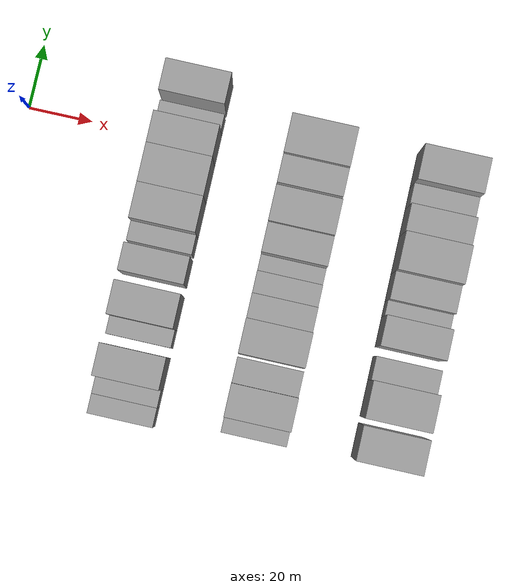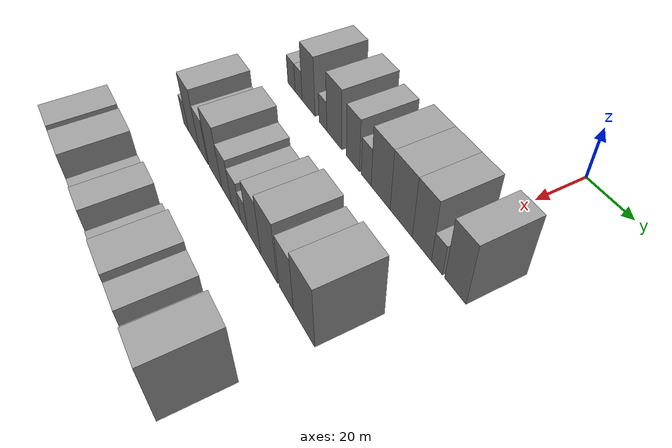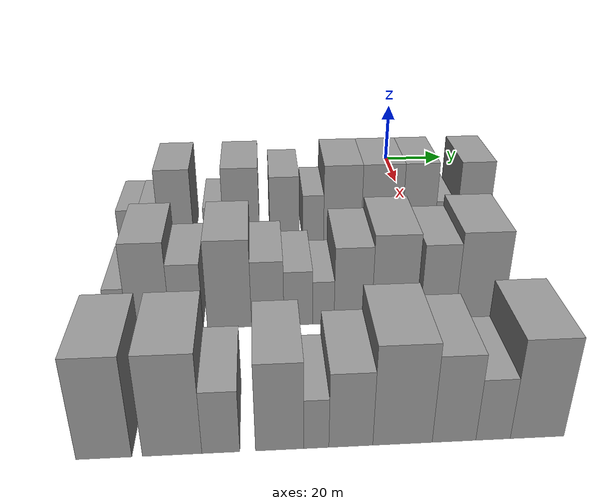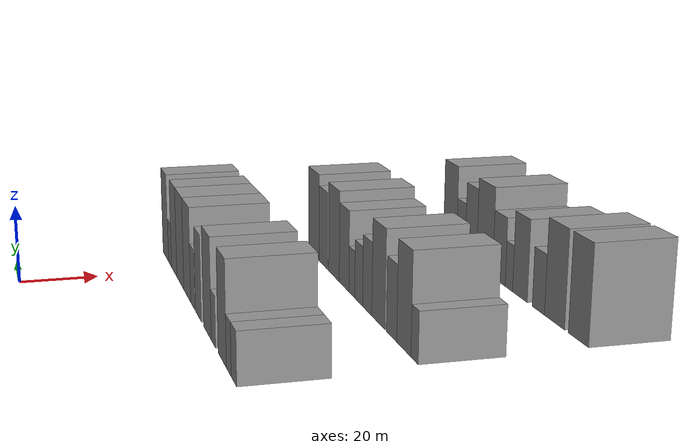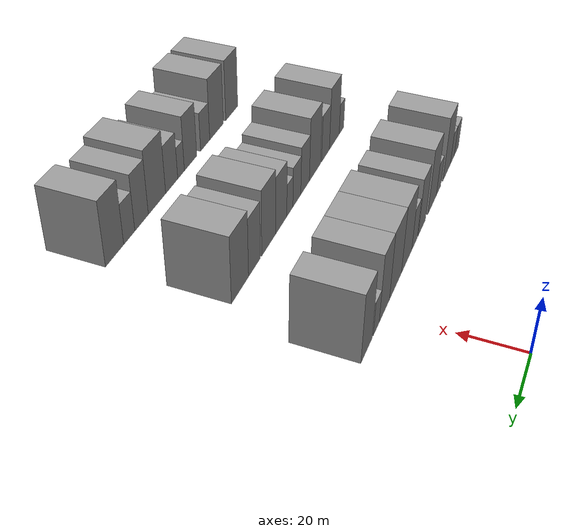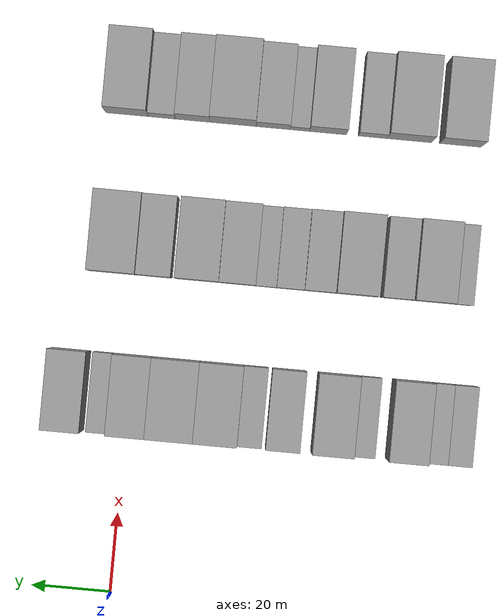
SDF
<sdf version="1.6">
 <world name="default">
  <model name="building_34">
   <static>1</static>
   <pose>50.0000 -83.8669 0 0.000000 0.000000 0.000000</pose>
   <link name="link">
    <pose>0 0 6.00 0 0 0</pose>
    <collision name="collision"><geometry><box><size>20.0000 5.9721 12.0000</size></box></geometry></collision>
    <visual name="visual">
     <cast_shadows>0</cast_shadows>
     <geometry><box><size>20.0000 5.9721 12.0000</size></box></geometry>
     <material>
      <script>
       <uri>model://grey_wall/materials/scripts</uri>
       <uri>model://grey_wall/materials/textures</uri>
       <name>vrc/grey_wall</name>
      </script>
     </material>
    </visual>
   </link>
  </model>
  <model name="building_35">
   <static>1</static>
   <pose>50.0000 -78.1564 0 0.000000 0.000000 0.000000</pose>
   <link name="link">
    <pose>0 0 6.00 0 0 0</pose>
    <collision name="collision"><geometry><box><size>20.0000 5.4489 12.0000</size></box></geometry></collision>
    <visual name="visual">
     <cast_shadows>0</cast_shadows>
     <geometry><box><size>20.0000 5.4489 12.0000</size></box></geometry>
     <material>
      <script>
       <uri>model://grey_wall/materials/scripts</uri>
       <uri>model://grey_wall/materials/textures</uri>
       <name>vrc/grey_wall</name>
      </script>
     </material>
    </visual>
   </link>
  </model>
  <model name="building_36">
   <static>1</static>
   <pose>50.0000 -70.5447 0 0.000000 0.000000 0.000000</pose>
   <link name="link">
    <pose>0 0 12.00 0 0 0</pose>
    <collision name="collision"><geometry><box><size>20.0000 9.7744 24.0000</size></box></geometry></collision>
    <visual name="visual">
     <cast_shadows>0</cast_shadows>
     <geometry><box><size>20.0000 9.7744 24.0000</size></box></geometry>
     <material>
      <script>
       <uri>model://grey_wall/materials/scripts</uri>
       <uri>model://grey_wall/materials/textures</uri>
       <name>vrc/grey_wall</name>
      </script>
     </material>
    </visual>
   </link>
  </model>
  <model name="building_37">
   <static>1</static>
   <pose>50.0000 -59.8990 0 0.000000 0.000000 0.000000</pose>
   <link name="link">
    <pose>0 0 6.00 0 0 0</pose>
    <collision name="collision"><geometry><box><size>20.0000 5.5169 12.0000</size></box></geometry></collision>
    <visual name="visual">
     <cast_shadows>0</cast_shadows>
     <geometry><box><size>20.0000 5.5169 12.0000</size></box></geometry>
     <material>
      <script>
       <uri>model://grey_wall/materials/scripts</uri>
       <uri>model://grey_wall/materials/textures</uri>
       <name>vrc/grey_wall</name>
      </script>
     </material>
    </visual>
   </link>
  </model>
  <model name="building_38">
   <static>1</static>
   <pose>50.0000 -51.9789 0 0.000000 0.000000 0.000000</pose>
   <link name="link">
    <pose>0 0 12.00 0 0 0</pose>
    <collision name="collision"><geometry><box><size>20.0000 10.3234 24.0000</size></box></geometry></collision>
    <visual name="visual">
     <cast_shadows>0</cast_shadows>
     <geometry><box><size>20.0000 10.3234 24.0000</size></box></geometry>
     <material>
      <script>
       <uri>model://grey_wall/materials/scripts</uri>
       <uri>model://grey_wall/materials/textures</uri>
       <name>vrc/grey_wall</name>
      </script>
     </material>
    </visual>
   </link>
  </model>
  <model name="building_39">
   <static>1</static>
   <pose>50.0000 -39.5940 0 0.000000 0.000000 0.000000</pose>
   <link name="link">
    <pose>0 0 10.50 0 0 0</pose>
    <collision name="collision"><geometry><box><size>20.0000 8.4463 21.0000</size></box></geometry></collision>
    <visual name="visual">
     <cast_shadows>0</cast_shadows>
     <geometry><box><size>20.0000 8.4463 21.0000</size></box></geometry>
     <material>
      <script>
       <uri>model://grey_wall/materials/scripts</uri>
       <uri>model://grey_wall/materials/textures</uri>
       <name>vrc/grey_wall</name>
      </script>
     </material>
    </visual>
   </link>
  </model>
  <model name="building_40">
   <static>1</static>
   <pose>50.0000 -31.3470 0 0.000000 0.000000 0.000000</pose>
   <link name="link">
    <pose>0 0 7.50 0 0 0</pose>
    <collision name="collision"><geometry><box><size>20.0000 6.0478 15.0000</size></box></geometry></collision>
    <visual name="visual">
     <cast_shadows>0</cast_shadows>
     <geometry><box><size>20.0000 6.0478 15.0000</size></box></geometry>
     <material>
      <script>
       <uri>model://grey_wall/materials/scripts</uri>
       <uri>model://grey_wall/materials/textures</uri>
       <name>vrc/grey_wall</name>
      </script>
     </material>
    </visual>
   </link>
  </model>
  <model name="building_41">
   <static>1</static>
   <pose>50.0000 -22.8566 0 0.000000 0.000000 0.000000</pose>
   <link name="link">
    <pose>0 0 12.00 0 0 0</pose>
    <collision name="collision"><geometry><box><size>20.0000 10.9331 24.0000</size></box></geometry></collision>
    <visual name="visual">
     <cast_shadows>0</cast_shadows>
     <geometry><box><size>20.0000 10.9331 24.0000</size></box></geometry>
     <material>
      <script>
       <uri>model://grey_wall/materials/scripts</uri>
       <uri>model://grey_wall/materials/textures</uri>
       <name>vrc/grey_wall</name>
      </script>
     </material>
    </visual>
   </link>
  </model>
  <model name="building_42">
   <static>1</static>
   <pose>50.0000 -11.4471 0 0.000000 0.000000 0.000000</pose>
   <link name="link">
    <pose>0 0 12.00 0 0 0</pose>
    <collision name="collision"><geometry><box><size>20.0000 11.8859 24.0000</size></box></geometry></collision>
    <visual name="visual">
     <cast_shadows>0</cast_shadows>
     <geometry><box><size>20.0000 11.8859 24.0000</size></box></geometry>
     <material>
      <script>
       <uri>model://grey_wall/materials/scripts</uri>
       <uri>model://grey_wall/materials/textures</uri>
       <name>vrc/grey_wall</name>
      </script>
     </material>
    </visual>
   </link>
  </model>
  <model name="building_43">
   <static>1</static>
   <pose>50.0000 -0.6827 0 0.000000 0.000000 0.000000</pose>
   <link name="link">
    <pose>0 0 12.00 0 0 0</pose>
    <collision name="collision"><geometry><box><size>20.0000 9.6428 24.0000</size></box></geometry></collision>
    <visual name="visual">
     <cast_shadows>0</cast_shadows>
     <geometry><box><size>20.0000 9.6428 24.0000</size></box></geometry>
     <material>
      <script>
       <uri>model://grey_wall/materials/scripts</uri>
       <uri>model://grey_wall/materials/textures</uri>
       <name>vrc/grey_wall</name>
      </script>
     </material>
    </visual>
   </link>
  </model>
  <model name="building_44">
   <static>1</static>
   <pose>50.0000 6.7849 0 0.000000 0.000000 0.000000</pose>
   <link name="link">
    <pose>0 0 6.00 0 0 0</pose>
    <collision name="collision"><geometry><box><size>20.0000 5.2925 12.0000</size></box></geometry></collision>
    <visual name="visual">
     <cast_shadows>0</cast_shadows>
     <geometry><box><size>20.0000 5.2925 12.0000</size></box></geometry>
     <material>
      <script>
       <uri>model://grey_wall/materials/scripts</uri>
       <uri>model://grey_wall/materials/textures</uri>
       <name>vrc/grey_wall</name>
      </script>
     </material>
    </visual>
   </link>
  </model>
  <model name="building_45">
   <static>1</static>
   <pose>50.0000 15.2552 0 0.000000 0.000000 0.000000</pose>
   <link name="link">
    <pose>0 0 12.00 0 0 0</pose>
    <collision name="collision"><geometry><box><size>20.0000 9.6482 24.0000</size></box></geometry></collision>
    <visual name="visual">
     <cast_shadows>0</cast_shadows>
     <geometry><box><size>20.0000 9.6482 24.0000</size></box></geometry>
     <material>
      <script>
       <uri>model://grey_wall/materials/scripts</uri>
       <uri>model://grey_wall/materials/textures</uri>
       <name>vrc/grey_wall</name>
      </script>
     </material>
    </visual>
   </link>
  </model>
  <model name="building_119">
   <static>1</static>
   <pose>90.0000 -81.1361 0 0.000000 0.000000 0.000000</pose>
   <link name="link">
    <pose>0 0 6.00 0 0 0</pose>
    <collision name="collision"><geometry><box><size>20.0000 4.8961 12.0000</size></box></geometry></collision>
    <visual name="visual">
     <cast_shadows>0</cast_shadows>
     <geometry><box><size>20.0000 4.8961 12.0000</size></box></geometry>
     <material>
      <script>
       <uri>model://grey_wall/materials/scripts</uri>
       <uri>model://grey_wall/materials/textures</uri>
       <name>vrc/grey_wall</name>
      </script>
     </material>
    </visual>
   </link>
  </model>
  <model name="building_120">
   <static>1</static>
   <pose>90.0000 -73.6357 0 0.000000 0.000000 0.000000</pose>
   <link name="link">
    <pose>0 0 12.00 0 0 0</pose>
    <collision name="collision"><geometry><box><size>20.0000 10.1047 24.0000</size></box></geometry></collision>
    <visual name="visual">
     <cast_shadows>0</cast_shadows>
     <geometry><box><size>20.0000 10.1047 24.0000</size></box></geometry>
     <material>
      <script>
       <uri>model://grey_wall/materials/scripts</uri>
       <uri>model://grey_wall/materials/textures</uri>
       <name>vrc/grey_wall</name>
      </script>
     </material>
    </visual>
   </link>
  </model>
  <model name="building_121">
   <static>1</static>
   <pose>90.0000 -64.6932 0 0.000000 0.000000 0.000000</pose>
   <link name="link">
    <pose>0 0 9.00 0 0 0</pose>
    <collision name="collision"><geometry><box><size>20.0000 7.7802 18.0000</size></box></geometry></collision>
    <visual name="visual">
     <cast_shadows>0</cast_shadows>
     <geometry><box><size>20.0000 7.7802 18.0000</size></box></geometry>
     <material>
      <script>
       <uri>model://grey_wall/materials/scripts</uri>
       <uri>model://grey_wall/materials/textures</uri>
       <name>vrc/grey_wall</name>
      </script>
     </material>
    </visual>
   </link>
  </model>
  <model name="building_122">
   <static>1</static>
   <pose>90.0000 -54.5188 0 0.000000 0.000000 0.000000</pose>
   <link name="link">
    <pose>0 0 12.00 0 0 0</pose>
    <collision name="collision"><geometry><box><size>20.0000 10.5686 24.0000</size></box></geometry></collision>
    <visual name="visual">
     <cast_shadows>0</cast_shadows>
     <geometry><box><size>20.0000 10.5686 24.0000</size></box></geometry>
     <material>
      <script>
       <uri>model://grey_wall/materials/scripts</uri>
       <uri>model://grey_wall/materials/textures</uri>
       <name>vrc/grey_wall</name>
      </script>
     </material>
    </visual>
   </link>
  </model>
  <model name="building_123">
   <static>1</static>
   <pose>90.0000 -45.3426 0 0.000000 0.000000 0.000000</pose>
   <link name="link">
    <pose>0 0 9.00 0 0 0</pose>
    <collision name="collision"><geometry><box><size>20.0000 7.7840 18.0000</size></box></geometry></collision>
    <visual name="visual">
     <cast_shadows>0</cast_shadows>
     <geometry><box><size>20.0000 7.7840 18.0000</size></box></geometry>
     <material>
      <script>
       <uri>model://grey_wall/materials/scripts</uri>
       <uri>model://grey_wall/materials/textures</uri>
       <name>vrc/grey_wall</name>
      </script>
     </material>
    </visual>
   </link>
  </model>
  <model name="building_124">
   <static>1</static>
   <pose>90.0000 -37.9799 0 0.000000 0.000000 0.000000</pose>
   <link name="link">
    <pose>0 0 7.50 0 0 0</pose>
    <collision name="collision"><geometry><box><size>20.0000 6.9413 15.0000</size></box></geometry></collision>
    <visual name="visual">
     <cast_shadows>0</cast_shadows>
     <geometry><box><size>20.0000 6.9413 15.0000</size></box></geometry>
     <material>
      <script>
       <uri>model://grey_wall/materials/scripts</uri>
       <uri>model://grey_wall/materials/textures</uri>
       <name>vrc/grey_wall</name>
      </script>
     </material>
    </visual>
   </link>
  </model>
  <model name="building_125">
   <static>1</static>
   <pose>90.0000 -31.9118 0 0.000000 0.000000 0.000000</pose>
   <link name="link">
    <pose>0 0 6.00 0 0 0</pose>
    <collision name="collision"><geometry><box><size>20.0000 5.1949 12.0000</size></box></geometry></collision>
    <visual name="visual">
     <cast_shadows>0</cast_shadows>
     <geometry><box><size>20.0000 5.1949 12.0000</size></box></geometry>
     <material>
      <script>
       <uri>model://grey_wall/materials/scripts</uri>
       <uri>model://grey_wall/materials/textures</uri>
       <name>vrc/grey_wall</name>
      </script>
     </material>
    </visual>
   </link>
  </model>
  <model name="building_126">
   <static>1</static>
   <pose>90.0000 -24.7465 0 0.000000 0.000000 0.000000</pose>
   <link name="link">
    <pose>0 0 10.50 0 0 0</pose>
    <collision name="collision"><geometry><box><size>20.0000 9.1358 21.0000</size></box></geometry></collision>
    <visual name="visual">
     <cast_shadows>0</cast_shadows>
     <geometry><box><size>20.0000 9.1358 21.0000</size></box></geometry>
     <material>
      <script>
       <uri>model://grey_wall/materials/scripts</uri>
       <uri>model://grey_wall/materials/textures</uri>
       <name>vrc/grey_wall</name>
      </script>
     </material>
    </visual>
   </link>
  </model>
  <model name="building_127">
   <static>1</static>
   <pose>90.0000 -14.7135 0 0.000000 0.000000 0.000000</pose>
   <link name="link">
    <pose>0 0 12.00 0 0 0</pose>
    <collision name="collision"><geometry><box><size>20.0000 10.9303 24.0000</size></box></geometry></collision>
    <visual name="visual">
     <cast_shadows>0</cast_shadows>
     <geometry><box><size>20.0000 10.9303 24.0000</size></box></geometry>
     <material>
      <script>
       <uri>model://grey_wall/materials/scripts</uri>
       <uri>model://grey_wall/materials/textures</uri>
       <name>vrc/grey_wall</name>
      </script>
     </material>
    </visual>
   </link>
  </model>
  <model name="building_128">
   <static>1</static>
   <pose>90.0000 -3.8963 0 0.000000 0.000000 0.000000</pose>
   <link name="link">
    <pose>0 0 10.50 0 0 0</pose>
    <collision name="collision"><geometry><box><size>20.0000 8.7041 21.0000</size></box></geometry></collision>
    <visual name="visual">
     <cast_shadows>0</cast_shadows>
     <geometry><box><size>20.0000 8.7041 21.0000</size></box></geometry>
     <material>
      <script>
       <uri>model://grey_wall/materials/scripts</uri>
       <uri>model://grey_wall/materials/textures</uri>
       <name>vrc/grey_wall</name>
      </script>
     </material>
    </visual>
   </link>
  </model>
  <model name="building_129">
   <static>1</static>
   <pose>90.0000 6.4374 0 0.000000 0.000000 0.000000</pose>
   <link name="link">
    <pose>0 0 12.00 0 0 0</pose>
    <collision name="collision"><geometry><box><size>20.0000 11.9633 24.0000</size></box></geometry></collision>
    <visual name="visual">
     <cast_shadows>0</cast_shadows>
     <geometry><box><size>20.0000 11.9633 24.0000</size></box></geometry>
     <material>
      <script>
       <uri>model://grey_wall/materials/scripts</uri>
       <uri>model://grey_wall/materials/textures</uri>
       <name>vrc/grey_wall</name>
      </script>
     </material>
    </visual>
   </link>
  </model>
  <model name="building_209">
   <static>1</static>
   <pose>130.0000 -77.2600 0 0.000000 0.000000 0.000000</pose>
   <link name="link">
    <pose>0 0 12.00 0 0 0</pose>
    <collision name="collision"><geometry><box><size>20.0000 10.4955 24.0000</size></box></geometry></collision>
    <visual name="visual">
     <cast_shadows>0</cast_shadows>
     <geometry><box><size>20.0000 10.4955 24.0000</size></box></geometry>
     <material>
      <script>
       <uri>model://grey_wall/materials/scripts</uri>
       <uri>model://grey_wall/materials/textures</uri>
       <name>vrc/grey_wall</name>
      </script>
     </material>
    </visual>
   </link>
  </model>
  <model name="building_210">
   <static>1</static>
   <pose>130.0000 -64.3797 0 0.000000 0.000000 0.000000</pose>
   <link name="link">
    <pose>0 0 12.00 0 0 0</pose>
    <collision name="collision"><geometry><box><size>20.0000 11.2652 24.0000</size></box></geometry></collision>
    <visual name="visual">
     <cast_shadows>0</cast_shadows>
     <geometry><box><size>20.0000 11.2652 24.0000</size></box></geometry>
     <material>
      <script>
       <uri>model://grey_wall/materials/scripts</uri>
       <uri>model://grey_wall/materials/textures</uri>
       <name>vrc/grey_wall</name>
      </script>
     </material>
    </visual>
   </link>
  </model>
  <model name="building_211">
   <static>1</static>
   <pose>130.0000 -55.1247 0 0.000000 0.000000 0.000000</pose>
   <link name="link">
    <pose>0 0 7.50 0 0 0</pose>
    <collision name="collision"><geometry><box><size>20.0000 7.2448 15.0000</size></box></geometry></collision>
    <visual name="visual">
     <cast_shadows>0</cast_shadows>
     <geometry><box><size>20.0000 7.2448 15.0000</size></box></geometry>
     <material>
      <script>
       <uri>model://grey_wall/materials/scripts</uri>
       <uri>model://grey_wall/materials/textures</uri>
       <name>vrc/grey_wall</name>
      </script>
     </material>
    </visual>
   </link>
  </model>
  <model name="building_212">
   <static>1</static>
   <pose>130.0000 -43.8469 0 0.000000 0.000000 0.000000</pose>
   <link name="link">
    <pose>0 0 10.50 0 0 0</pose>
    <collision name="collision"><geometry><box><size>20.0000 9.3107 21.0000</size></box></geometry></collision>
    <visual name="visual">
     <cast_shadows>0</cast_shadows>
     <geometry><box><size>20.0000 9.3107 21.0000</size></box></geometry>
     <material>
      <script>
       <uri>model://grey_wall/materials/scripts</uri>
       <uri>model://grey_wall/materials/textures</uri>
       <name>vrc/grey_wall</name>
      </script>
     </material>
    </visual>
   </link>
  </model>
  <model name="building_213">
   <static>1</static>
   <pose>130.0000 -36.7737 0 0.000000 0.000000 0.000000</pose>
   <link name="link">
    <pose>0 0 6.00 0 0 0</pose>
    <collision name="collision"><geometry><box><size>20.0000 4.8358 12.0000</size></box></geometry></collision>
    <visual name="visual">
     <cast_shadows>0</cast_shadows>
     <geometry><box><size>20.0000 4.8358 12.0000</size></box></geometry>
     <material>
      <script>
       <uri>model://grey_wall/materials/scripts</uri>
       <uri>model://grey_wall/materials/textures</uri>
       <name>vrc/grey_wall</name>
      </script>
     </material>
    </visual>
   </link>
  </model>
  <model name="building_214">
   <static>1</static>
   <pose>130.0000 -30.0800 0 0.000000 0.000000 0.000000</pose>
   <link name="link">
    <pose>0 0 9.00 0 0 0</pose>
    <collision name="collision"><geometry><box><size>20.0000 8.5516 18.0000</size></box></geometry></collision>
    <visual name="visual">
     <cast_shadows>0</cast_shadows>
     <geometry><box><size>20.0000 8.5516 18.0000</size></box></geometry>
     <material>
      <script>
       <uri>model://grey_wall/materials/scripts</uri>
       <uri>model://grey_wall/materials/textures</uri>
       <name>vrc/grey_wall</name>
      </script>
     </material>
    </visual>
   </link>
  </model>
  <model name="building_215">
   <static>1</static>
   <pose>130.0000 -19.9773 0 0.000000 0.000000 0.000000</pose>
   <link name="link">
    <pose>0 0 12.00 0 0 0</pose>
    <collision name="collision"><geometry><box><size>20.0000 11.6537 24.0000</size></box></geometry></collision>
    <visual name="visual">
     <cast_shadows>0</cast_shadows>
     <geometry><box><size>20.0000 11.6537 24.0000</size></box></geometry>
     <material>
      <script>
       <uri>model://grey_wall/materials/scripts</uri>
       <uri>model://grey_wall/materials/textures</uri>
       <name>vrc/grey_wall</name>
      </script>
     </material>
    </visual>
   </link>
  </model>
  <model name="building_216">
   <static>1</static>
   <pose>130.0000 -9.8284 0 0.000000 0.000000 0.000000</pose>
   <link name="link">
    <pose>0 0 10.50 0 0 0</pose>
    <collision name="collision"><geometry><box><size>20.0000 8.6442 21.0000</size></box></geometry></collision>
    <visual name="visual">
     <cast_shadows>0</cast_shadows>
     <geometry><box><size>20.0000 8.6442 21.0000</size></box></geometry>
     <material>
      <script>
       <uri>model://grey_wall/materials/scripts</uri>
       <uri>model://grey_wall/materials/textures</uri>
       <name>vrc/grey_wall</name>
      </script>
     </material>
    </visual>
   </link>
  </model>
  <model name="building_217">
   <static>1</static>
   <pose>130.0000 -2.0779 0 0.000000 0.000000 0.000000</pose>
   <link name="link">
    <pose>0 0 7.50 0 0 0</pose>
    <collision name="collision"><geometry><box><size>20.0000 6.8568 15.0000</size></box></geometry></collision>
    <visual name="visual">
     <cast_shadows>0</cast_shadows>
     <geometry><box><size>20.0000 6.8568 15.0000</size></box></geometry>
     <material>
      <script>
       <uri>model://grey_wall/materials/scripts</uri>
       <uri>model://grey_wall/materials/textures</uri>
       <name>vrc/grey_wall</name>
      </script>
     </material>
    </visual>
   </link>
  </model>
  <model name="building_218">
   <static>1</static>
   <pose>130.0000 6.7359 0 0.000000 0.000000 0.000000</pose>
   <link name="link">
    <pose>0 0 12.00 0 0 0</pose>
    <collision name="collision"><geometry><box><size>20.0000 10.7706 24.0000</size></box></geometry></collision>
    <visual name="visual">
     <cast_shadows>0</cast_shadows>
     <geometry><box><size>20.0000 10.7706 24.0000</size></box></geometry>
     <material>
      <script>
       <uri>model://grey_wall/materials/scripts</uri>
       <uri>model://grey_wall/materials/textures</uri>
       <name>vrc/grey_wall</name>
      </script>
     </material>
    </visual>
   </link>
  </model>
 </world>
</sdf>
